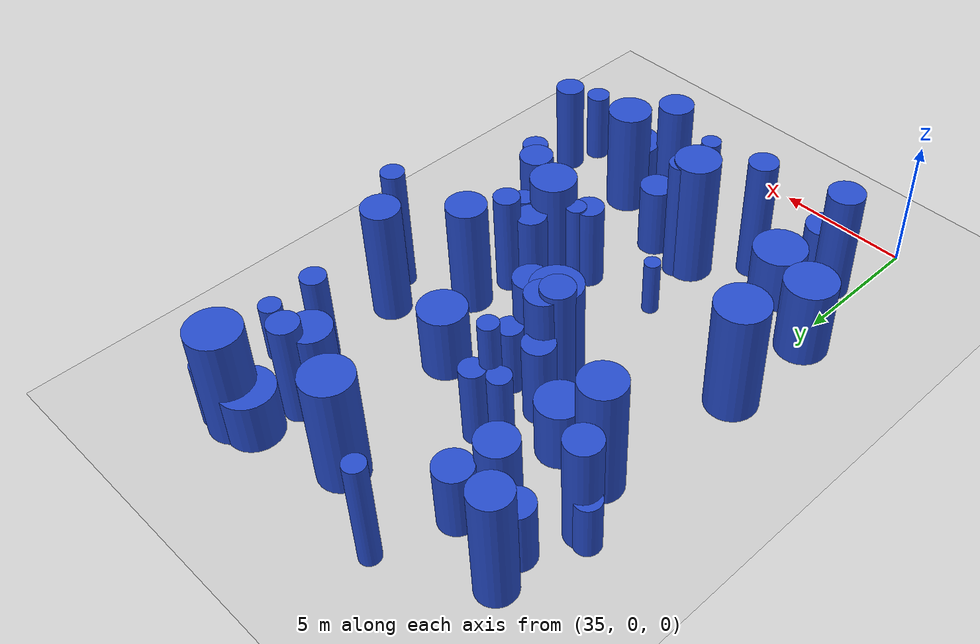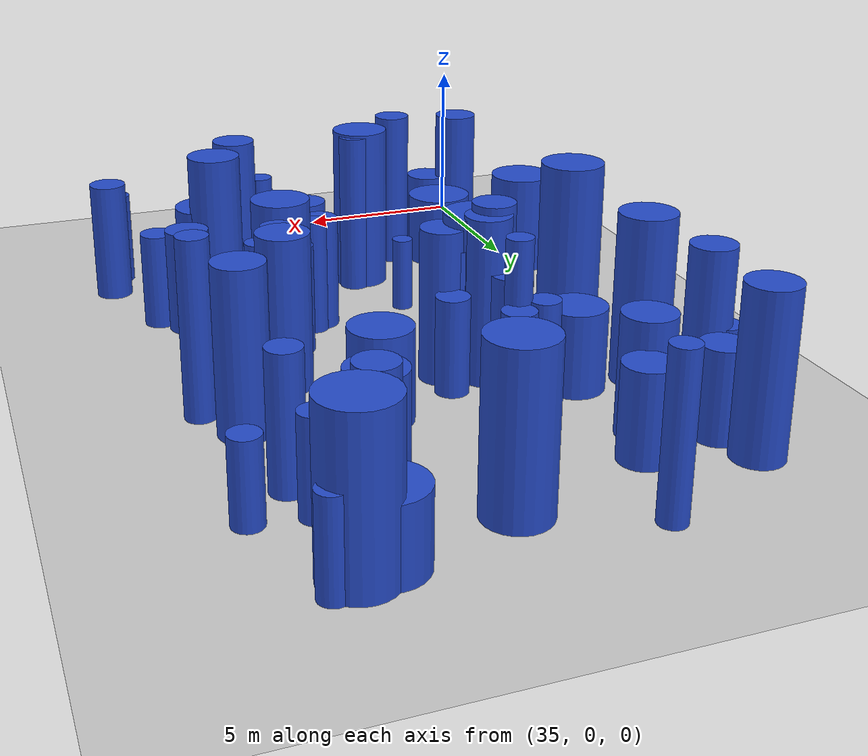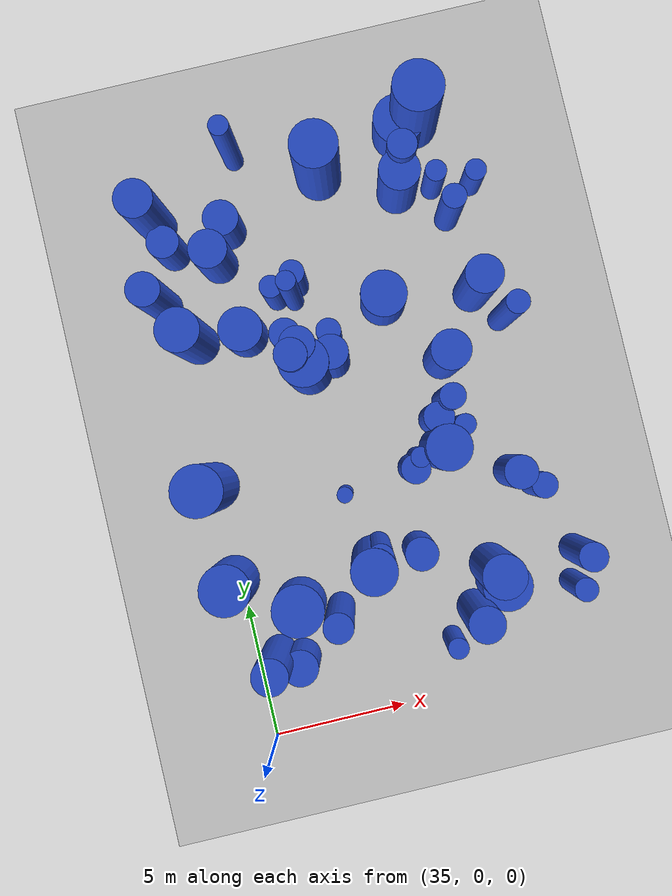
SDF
<sdf version="1.6">
 <world name="default">
  <model name="ground_plane">
   <static>1</static>
   <link name="link">
    <collision name="collision">
     <geometry><plane><normal>0 0 1</normal><size>100 100</size></plane></geometry>
     <surface><friction><ode><mu>100</mu><mu2>50</mu2></ode></friction></surface>
    </collision>
    <visual name="visual">
     <cast_shadows>0</cast_shadows>
     <geometry><plane><normal>0 0 1</normal><size>100 100</size></plane></geometry>
     <material>
      <script><uri>file://media/materials/scripts/gazebo.material</uri><name>Gazebo/Grey</name></script>
     </material>
    </visual>
   </link>
  </model>
  <model name="2">
   <static>0</static>
   <link name="link">
    <inertial>
     <mass>2</mass>
     <inertia><ixx>3.20586</ixx><ixy>0</ixy><ixz>0</ixz><iyy>3.20586</iyy><iyz>0</iyz><izz>0.636563</izz></inertia>
    </inertial>
    <collision name="collision">
     <geometry><cylinder><length>4.16238</length><radius>0.797849</radius></cylinder></geometry>
     <surface><contact><collide_without_contact>1</collide_without_contact></contact></surface>
    </collision>
    <visual name="visual">
     <geometry><cylinder><length>4.16238</length><radius>0.797849</radius></cylinder></geometry>
     <material>
      <script><uri>file://media/materials/scripts/gazebo.material</uri><name>Gazebo/Blue</name></script>
     </material>
    </visual>
    <gravity>0</gravity>
   </link>
   <pose>44.4662 4.48744 2.08119 0 -0 0</pose>
  </model>
  <model name="8">
   <static>0</static>
   <link name="link">
    <inertial>
     <mass>2</mass>
     <inertia><ixx>3.88325</ixx><ixy>0</ixy><ixz>0</ixz><iyy>3.88325</iyy><iyz>0</iyz><izz>0.126882</izz></inertia>
    </inertial>
    <collision name="collision">
     <geometry><cylinder><length>4.78737</length><radius>0.356206</radius></cylinder></geometry>
     <surface><contact><collide_without_contact>1</collide_without_contact></contact></surface>
    </collision>
    <visual name="visual">
     <geometry><cylinder><length>4.78737</length><radius>0.356206</radius></cylinder></geometry>
     <material>
      <script><uri>file://media/materials/scripts/gazebo.material</uri><name>Gazebo/Blue</name></script>
     </material>
    </visual>
    <gravity>0</gravity>
   </link>
   <pose>39.4281 16.1246 2.39368 0 -0 0</pose>
  </model>
  <model name="10">
   <static>0</static>
   <link name="link">
    <inertial>
     <mass>2</mass>
     <inertia><ixx>3.24813</ixx><ixy>0</ixy><ixz>0</ixz><iyy>3.24813</iyy><iyz>0</iyz><izz>0.387761</izz></inertia>
    </inertial>
    <collision name="collision">
     <geometry><cylinder><length>4.28083</length><radius>0.622705</radius></cylinder></geometry>
     <surface><contact><collide_without_contact>1</collide_without_contact></contact></surface>
    </collision>
    <visual name="visual">
     <geometry><cylinder><length>4.28083</length><radius>0.622705</radius></cylinder></geometry>
     <material>
      <script><uri>file://media/materials/scripts/gazebo.material</uri><name>Gazebo/Blue</name></script>
     </material>
    </visual>
    <gravity>0</gravity>
   </link>
   <pose>40.3812 13.4456 2.14041 0 -0 0</pose>
  </model>
  <model name="30">
   <static>0</static>
   <link name="link">
    <inertial>
     <mass>2</mass>
     <inertia><ixx>2.2394</ixx><ixy>0</ixy><ixz>0</ixz><iyy>2.2394</iyy><iyz>0</iyz><izz>0.282543</izz></inertia>
    </inertial>
    <collision name="collision">
     <geometry><cylinder><length>3.54806</length><radius>0.531548</radius></cylinder></geometry>
     <surface><contact><collide_without_contact>1</collide_without_contact></contact></surface>
    </collision>
    <visual name="visual">
     <geometry><cylinder><length>3.54806</length><radius>0.531548</radius></cylinder></geometry>
     <material>
      <script><uri>file://media/materials/scripts/gazebo.material</uri><name>Gazebo/Blue</name></script>
     </material>
    </visual>
    <gravity>0</gravity>
   </link>
   <pose>47.7304 4.35367 1.77403 0 -0 0</pose>
  </model>
  <model name="36">
   <static>0</static>
   <link name="link">
    <inertial>
     <mass>2</mass>
     <inertia><ixx>4.09144</ixx><ixy>0</ixy><ixz>0</ixz><iyy>4.09144</iyy><iyz>0</iyz><izz>0.182254</izz></inertia>
    </inertial>
    <collision name="collision">
     <geometry><cylinder><length>4.89917</length><radius>0.426913</radius></cylinder></geometry>
     <surface><contact><collide_without_contact>1</collide_without_contact></contact></surface>
    </collision>
    <visual name="visual">
     <geometry><cylinder><length>4.89917</length><radius>0.426913</radius></cylinder></geometry>
     <material>
      <script><uri>file://media/materials/scripts/gazebo.material</uri><name>Gazebo/Blue</name></script>
     </material>
    </visual>
    <gravity>0</gravity>
   </link>
   <pose>47.0082 13.591 2.44958 0 -0 0</pose>
  </model>
  <model name="55">
   <static>0</static>
   <link name="link">
    <inertial>
     <mass>2</mass>
     <inertia><ixx>2.32083</ixx><ixy>0</ixy><ixz>0</ixz><iyy>2.32083</iyy><iyz>0</iyz><izz>0.590697</izz></inertia>
    </inertial>
    <collision name="collision">
     <geometry><cylinder><length>3.4861</length><radius>0.768568</radius></cylinder></geometry>
     <surface><contact><collide_without_contact>1</collide_without_contact></contact></surface>
    </collision>
    <visual name="visual">
     <geometry><cylinder><length>3.4861</length><radius>0.768568</radius></cylinder></geometry>
     <material>
      <script><uri>file://media/materials/scripts/gazebo.material</uri><name>Gazebo/Blue</name></script>
     </material>
    </visual>
    <gravity>0</gravity>
   </link>
   <pose>44.2646 19.3378 1.74305 0 -0 0</pose>
  </model>
  <model name="68">
   <static>0</static>
   <link name="link">
    <inertial>
     <mass>2</mass>
     <inertia><ixx>4.05064</ixx><ixy>0</ixy><ixz>0</ixz><iyy>4.05064</iyy><iyz>0</iyz><izz>0.285058</izz></inertia>
    </inertial>
    <collision name="collision">
     <geometry><cylinder><length>4.84238</length><radius>0.533908</radius></cylinder></geometry>
     <surface><contact><collide_without_contact>1</collide_without_contact></contact></surface>
    </collision>
    <visual name="visual">
     <geometry><cylinder><length>4.84238</length><radius>0.533908</radius></cylinder></geometry>
     <material>
      <script><uri>file://media/materials/scripts/gazebo.material</uri><name>Gazebo/Blue</name></script>
     </material>
    </visual>
    <gravity>0</gravity>
   </link>
   <pose>38.5073 4.20949 2.42119 0 -0 0</pose>
  </model>
  <model name="70">
   <static>0</static>
   <link name="link">
    <inertial>
     <mass>2</mass>
     <inertia><ixx>3.66577</ixx><ixy>0</ixy><ixz>0</ixz><iyy>3.66577</iyy><iyz>0</iyz><izz>0.497393</izz></inertia>
    </inertial>
    <collision name="collision">
     <geometry><cylinder><length>4.52796</length><radius>0.705261</radius></cylinder></geometry>
     <surface><contact><collide_without_contact>1</collide_without_contact></contact></surface>
    </collision>
    <visual name="visual">
     <geometry><cylinder><length>4.52796</length><radius>0.705261</radius></cylinder></geometry>
     <material>
      <script><uri>file://media/materials/scripts/gazebo.material</uri><name>Gazebo/Blue</name></script>
     </material>
    </visual>
    <gravity>0</gravity>
   </link>
   <pose>34.9107 20.1823 2.26398 0 -0 0</pose>
  </model>
  <model name="72">
   <static>0</static>
   <link name="link">
    <inertial>
     <mass>2</mass>
     <inertia><ixx>1.26226</ixx><ixy>0</ixy><ixz>0</ixz><iyy>1.26226</iyy><iyz>0</iyz><izz>0.691062</izz></inertia>
    </inertial>
    <collision name="collision">
     <geometry><cylinder><length>2.34529</length><radius>0.831302</radius></cylinder></geometry>
     <surface><contact><collide_without_contact>1</collide_without_contact></contact></surface>
    </collision>
    <visual name="visual">
     <geometry><cylinder><length>2.34529</length><radius>0.831302</radius></cylinder></geometry>
     <material>
      <script><uri>file://media/materials/scripts/gazebo.material</uri><name>Gazebo/Blue</name></script>
     </material>
    </visual>
    <gravity>0</gravity>
   </link>
   <pose>37.3059 15.2245 1.17264 0 -0 0</pose>
  </model>
  <model name="75">
   <static>0</static>
   <link name="link">
    <inertial>
     <mass>2</mass>
     <inertia><ixx>3.39002</ixx><ixy>0</ixy><ixz>0</ixz><iyy>3.39002</iyy><iyz>0</iyz><izz>0.436853</izz></inertia>
    </inertial>
    <collision name="collision">
     <geometry><cylinder><length>4.36229</length><radius>0.660948</radius></cylinder></geometry>
     <surface><contact><collide_without_contact>1</collide_without_contact></contact></surface>
    </collision>
    <visual name="visual">
     <geometry><cylinder><length>4.36229</length><radius>0.660948</radius></cylinder></geometry>
     <material>
      <script><uri>file://media/materials/scripts/gazebo.material</uri><name>Gazebo/Blue</name></script>
     </material>
    </visual>
    <gravity>0</gravity>
   </link>
   <pose>35.805 3.03949 2.18115 0 -0 0</pose>
  </model>
  <model name="78">
   <static>0</static>
   <link name="link">
    <inertial>
     <mass>2</mass>
     <inertia><ixx>4.04847</ixx><ixy>0</ixy><ixz>0</ixz><iyy>4.04847</iyy><iyz>0</iyz><izz>0.629911</izz></inertia>
    </inertial>
    <collision name="collision">
     <geometry><cylinder><length>4.73298</length><radius>0.793669</radius></cylinder></geometry>
     <surface><contact><collide_without_contact>1</collide_without_contact></contact></surface>
    </collision>
    <visual name="visual">
     <geometry><cylinder><length>4.73298</length><radius>0.793669</radius></cylinder></geometry>
     <material>
      <script><uri>file://media/materials/scripts/gazebo.material</uri><name>Gazebo/Blue</name></script>
     </material>
    </visual>
    <gravity>0</gravity>
   </link>
   <pose>35.4182 15.3407 2.36649 0 -0 0</pose>
  </model>
  <model name="83">
   <static>0</static>
   <link name="link">
    <inertial>
     <mass>2</mass>
     <inertia><ixx>1.1459</ixx><ixy>0</ixy><ixz>0</ixz><iyy>1.1459</iyy><iyz>0</iyz><izz>0.941021</izz></inertia>
    </inertial>
    <collision name="collision">
     <geometry><cylinder><length>2.01304</length><radius>0.970062</radius></cylinder></geometry>
     <surface><contact><collide_without_contact>1</collide_without_contact></contact></surface>
    </collision>
    <visual name="visual">
     <geometry><cylinder><length>2.01304</length><radius>0.970062</radius></cylinder></geometry>
     <material>
      <script><uri>file://media/materials/scripts/gazebo.material</uri><name>Gazebo/Blue</name></script>
     </material>
    </visual>
    <gravity>0</gravity>
   </link>
   <pose>44.8178 21.6069 1.00652 0 -0 0</pose>
  </model>
  <model name="92">
   <static>0</static>
   <link name="link">
    <inertial>
     <mass>2</mass>
     <inertia><ixx>2.81245</ixx><ixy>0</ixy><ixz>0</ixz><iyy>2.81245</iyy><iyz>0</iyz><izz>0.301857</izz></inertia>
    </inertial>
    <collision name="collision">
     <geometry><cylinder><length>3.99614</length><radius>0.549415</radius></cylinder></geometry>
     <surface><contact><collide_without_contact>1</collide_without_contact></contact></surface>
    </collision>
    <visual name="visual">
     <geometry><cylinder><length>3.99614</length><radius>0.549415</radius></cylinder></geometry>
     <material>
      <script><uri>file://media/materials/scripts/gazebo.material</uri><name>Gazebo/Blue</name></script>
     </material>
    </visual>
    <gravity>0</gravity>
   </link>
   <pose>44.5098 20.0687 1.99807 0 -0 0</pose>
  </model>
  <model name="96">
   <static>0</static>
   <link name="link">
    <inertial>
     <mass>2</mass>
     <inertia><ixx>1.17348</ixx><ixy>0</ixy><ixz>0</ixz><iyy>1.17348</iyy><iyz>0</iyz><izz>0.148193</izz></inertia>
    </inertial>
    <collision name="collision">
     <geometry><cylinder><length>2.56832</length><radius>0.384959</radius></cylinder></geometry>
     <surface><contact><collide_without_contact>1</collide_without_contact></contact></surface>
    </collision>
    <visual name="visual">
     <geometry><cylinder><length>2.56832</length><radius>0.384959</radius></cylinder></geometry>
     <material>
      <script><uri>file://media/materials/scripts/gazebo.material</uri><name>Gazebo/Blue</name></script>
     </material>
    </visual>
    <gravity>0</gravity>
   </link>
   <pose>42.4134 2.12337 1.28416 0 -0 0</pose>
  </model>
  <model name="107">
   <static>0</static>
   <link name="link">
    <inertial>
     <mass>2</mass>
     <inertia><ixx>1.72381</ixx><ixy>0</ixy><ixz>0</ixz><iyy>1.72381</iyy><iyz>0</iyz><izz>0.38773</izz></inertia>
    </inertial>
    <collision name="collision">
     <geometry><cylinder><length>3.0298</length><radius>0.62268</radius></cylinder></geometry>
     <surface><contact><collide_without_contact>1</collide_without_contact></contact></surface>
    </collision>
    <visual name="visual">
     <geometry><cylinder><length>3.0298</length><radius>0.62268</radius></cylinder></geometry>
     <material>
      <script><uri>file://media/materials/scripts/gazebo.material</uri><name>Gazebo/Blue</name></script>
     </material>
    </visual>
    <gravity>0</gravity>
   </link>
   <pose>46.0377 7.80321 1.5149 0 -0 0</pose>
  </model>
  <model name="113">
   <static>0</static>
   <link name="link">
    <inertial>
     <mass>2</mass>
     <inertia><ixx>1.79663</ixx><ixy>0</ixy><ixz>0</ixz><iyy>1.79663</iyy><iyz>0</iyz><izz>0.325162</izz></inertia>
    </inertial>
    <collision name="collision">
     <geometry><cylinder><length>3.13118</length><radius>0.57023</radius></cylinder></geometry>
     <surface><contact><collide_without_contact>1</collide_without_contact></contact></surface>
    </collision>
    <visual name="visual">
     <geometry><cylinder><length>3.13118</length><radius>0.57023</radius></cylinder></geometry>
     <material>
      <script><uri>file://media/materials/scripts/gazebo.material</uri><name>Gazebo/Blue</name></script>
     </material>
    </visual>
    <gravity>0</gravity>
   </link>
   <pose>43.6165 10.3969 1.56559 0 -0 0</pose>
  </model>
  <model name="124">
   <static>0</static>
   <link name="link">
    <inertial>
     <mass>2</mass>
     <inertia><ixx>1.4041</ixx><ixy>0</ixy><ixz>0</ixz><iyy>1.4041</iyy><iyz>0</iyz><izz>0.229798</izz></inertia>
    </inertial>
    <collision name="collision">
     <geometry><cylinder><length>2.78123</length><radius>0.479372</radius></cylinder></geometry>
     <surface><contact><collide_without_contact>1</collide_without_contact></contact></surface>
    </collision>
    <visual name="visual">
     <geometry><cylinder><length>2.78123</length><radius>0.479372</radius></cylinder></geometry>
     <material>
      <script><uri>file://media/materials/scripts/gazebo.material</uri><name>Gazebo/Blue</name></script>
     </material>
    </visual>
    <gravity>0</gravity>
   </link>
   <pose>46.7902 7.13736 1.39061 0 -0 0</pose>
  </model>
  <model name="129">
   <static>0</static>
   <link name="link">
    <inertial>
     <mass>2</mass>
     <inertia><ixx>2.30241</ixx><ixy>0</ixy><ixz>0</ixz><iyy>2.30241</iyy><iyz>0</iyz><izz>0.209643</izz></inertia>
    </inertial>
    <collision name="collision">
     <geometry><cylinder><length>3.63118</length><radius>0.457868</radius></cylinder></geometry>
     <surface><contact><collide_without_contact>1</collide_without_contact></contact></surface>
    </collision>
    <visual name="visual">
     <geometry><cylinder><length>3.63118</length><radius>0.457868</radius></cylinder></geometry>
     <material>
      <script><uri>file://media/materials/scripts/gazebo.material</uri><name>Gazebo/Blue</name></script>
     </material>
    </visual>
    <gravity>0</gravity>
   </link>
   <pose>45.9307 17.922 1.81559 0 -0 0</pose>
  </model>
  <model name="136">
   <static>0</static>
   <link name="link">
    <inertial>
     <mass>2</mass>
     <inertia><ixx>1.26179</ixx><ixy>0</ixy><ixz>0</ixz><iyy>1.26179</iyy><iyz>0</iyz><izz>0.374981</izz></inertia>
    </inertial>
    <collision name="collision">
     <geometry><cylinder><length>2.53885</length><radius>0.612357</radius></cylinder></geometry>
     <surface><contact><collide_without_contact>1</collide_without_contact></contact></surface>
    </collision>
    <visual name="visual">
     <geometry><cylinder><length>2.53885</length><radius>0.612357</radius></cylinder></geometry>
     <material>
      <script><uri>file://media/materials/scripts/gazebo.material</uri><name>Gazebo/Blue</name></script>
     </material>
    </visual>
    <gravity>0</gravity>
   </link>
   <pose>35.2739 18.9705 1.26943 0 -0 0</pose>
  </model>
  <model name="142">
   <static>0</static>
   <link name="link">
    <inertial>
     <mass>2</mass>
     <inertia><ixx>1.48896</ixx><ixy>0</ixy><ixz>0</ixz><iyy>1.48896</iyy><iyz>0</iyz><izz>0.754625</izz></inertia>
    </inertial>
    <collision name="collision">
     <geometry><cylinder><length>2.58261</length><radius>0.868692</radius></cylinder></geometry>
     <surface><contact><collide_without_contact>1</collide_without_contact></contact></surface>
    </collision>
    <visual name="visual">
     <geometry><cylinder><length>2.58261</length><radius>0.868692</radius></cylinder></geometry>
     <material>
      <script><uri>file://media/materials/scripts/gazebo.material</uri><name>Gazebo/Blue</name></script>
     </material>
    </visual>
    <gravity>0</gravity>
   </link>
   <pose>42.7426 15.2603 1.29131 0 -0 0</pose>
  </model>
  <model name="143">
   <static>0</static>
   <link name="link">
    <inertial>
     <mass>2</mass>
     <inertia><ixx>3.53239</ixx><ixy>0</ixy><ixz>0</ixz><iyy>3.53239</iyy><iyz>0</iyz><izz>0.90512</izz></inertia>
    </inertial>
    <collision name="collision">
     <geometry><cylinder><length>4.29872</length><radius>0.951378</radius></cylinder></geometry>
     <surface><contact><collide_without_contact>1</collide_without_contact></contact></surface>
    </collision>
    <visual name="visual">
     <geometry><cylinder><length>4.29872</length><radius>0.951378</radius></cylinder></geometry>
     <material>
      <script><uri>file://media/materials/scripts/gazebo.material</uri><name>Gazebo/Blue</name></script>
     </material>
    </visual>
    <gravity>0</gravity>
   </link>
   <pose>45.5094 21.8679 2.14936 0 -0 0</pose>
  </model>
  <model name="149">
   <static>0</static>
   <link name="link">
    <inertial>
     <mass>2</mass>
     <inertia><ixx>3.19204</ixx><ixy>0</ixy><ixz>0</ixz><iyy>3.19204</iyy><iyz>0</iyz><izz>0.69083</izz></inertia>
    </inertial>
    <collision name="collision">
     <geometry><cylinder><length>4.13277</length><radius>0.831162</radius></cylinder></geometry>
     <surface><contact><collide_without_contact>1</collide_without_contact></contact></surface>
    </collision>
    <visual name="visual">
     <geometry><cylinder><length>4.13277</length><radius>0.831162</radius></cylinder></geometry>
     <material>
      <script><uri>file://media/materials/scripts/gazebo.material</uri><name>Gazebo/Blue</name></script>
     </material>
    </visual>
    <gravity>0</gravity>
   </link>
   <pose>43.6358 9.26999 2.06638 0 -0 0</pose>
  </model>
  <model name="151">
   <static>0</static>
   <link name="link">
    <inertial>
     <mass>2</mass>
     <inertia><ixx>1.73489</ixx><ixy>0</ixy><ixz>0</ixz><iyy>1.73489</iyy><iyz>0</iyz><izz>0.173939</izz></inertia>
    </inertial>
    <collision name="collision">
     <geometry><cylinder><length>3.14445</length><radius>0.41706</radius></cylinder></geometry>
     <surface><contact><collide_without_contact>1</collide_without_contact></contact></surface>
    </collision>
    <visual name="visual">
     <geometry><cylinder><length>3.14445</length><radius>0.41706</radius></cylinder></geometry>
     <material>
      <script><uri>file://media/materials/scripts/gazebo.material</uri><name>Gazebo/Blue</name></script>
     </material>
    </visual>
    <gravity>0</gravity>
   </link>
   <pose>38.7905 16.3474 1.57222 0 -0 0</pose>
  </model>
  <model name="157">
   <static>0</static>
   <link name="link">
    <inertial>
     <mass>2</mass>
     <inertia><ixx>1.33129</ixx><ixy>0</ixy><ixz>0</ixz><iyy>1.33129</iyy><iyz>0</iyz><izz>0.217097</izz></inertia>
    </inertial>
    <collision name="collision">
     <geometry><cylinder><length>2.70858</length><radius>0.465937</radius></cylinder></geometry>
     <surface><contact><collide_without_contact>1</collide_without_contact></contact></surface>
    </collision>
    <visual name="visual">
     <geometry><cylinder><length>2.70858</length><radius>0.465937</radius></cylinder></geometry>
     <material>
      <script><uri>file://media/materials/scripts/gazebo.material</uri><name>Gazebo/Blue</name></script>
     </material>
    </visual>
    <gravity>0</gravity>
   </link>
   <pose>40.456 14.377 1.35429 0 -0 0</pose>
  </model>
  <model name="161">
   <static>0</static>
   <link name="link">
    <inertial>
     <mass>2</mass>
     <inertia><ixx>1.94302</ixx><ixy>0</ixy><ixz>0</ixz><iyy>1.94302</iyy><iyz>0</iyz><izz>0.289682</izz></inertia>
    </inertial>
    <collision name="collision">
     <geometry><cylinder><length>3.28467</length><radius>0.538221</radius></cylinder></geometry>
     <surface><contact><collide_without_contact>1</collide_without_contact></contact></surface>
    </collision>
    <visual name="visual">
     <geometry><cylinder><length>3.28467</length><radius>0.538221</radius></cylinder></geometry>
     <material>
      <script><uri>file://media/materials/scripts/gazebo.material</uri><name>Gazebo/Blue</name></script>
     </material>
    </visual>
    <gravity>0</gravity>
   </link>
   <pose>42.3718 8.77913 1.64233 0 -0 0</pose>
  </model>
  <model name="162">
   <static>0</static>
   <link name="link">
    <inertial>
     <mass>2</mass>
     <inertia><ixx>1.94466</ixx><ixy>0</ixy><ixz>0</ixz><iyy>1.94466</iyy><iyz>0</iyz><izz>0.138357</izz></inertia>
    </inertial>
    <collision name="collision">
     <geometry><cylinder><length>3.35453</length><radius>0.371964</radius></cylinder></geometry>
     <surface><contact><collide_without_contact>1</collide_without_contact></contact></surface>
    </collision>
    <visual name="visual">
     <geometry><cylinder><length>3.35453</length><radius>0.371964</radius></cylinder></geometry>
     <material>
      <script><uri>file://media/materials/scripts/gazebo.material</uri><name>Gazebo/Blue</name></script>
     </material>
    </visual>
    <gravity>0</gravity>
   </link>
   <pose>42.6403 9.15377 1.67727 0 -0 0</pose>
  </model>
  <model name="165">
   <static>0</static>
   <link name="link">
    <inertial>
     <mass>2</mass>
     <inertia><ixx>1.24681</ixx><ixy>0</ixy><ixz>0</ixz><iyy>1.24681</iyy><iyz>0</iyz><izz>0.164275</izz></inertia>
    </inertial>
    <collision name="collision">
     <geometry><cylinder><length>2.64349</length><radius>0.405309</radius></cylinder></geometry>
     <surface><contact><collide_without_contact>1</collide_without_contact></contact></surface>
    </collision>
    <visual name="visual">
     <geometry><cylinder><length>2.64349</length><radius>0.405309</radius></cylinder></geometry>
     <material>
      <script><uri>file://media/materials/scripts/gazebo.material</uri><name>Gazebo/Blue</name></script>
     </material>
    </visual>
    <gravity>0</gravity>
   </link>
   <pose>45.6412 19.2257 1.32174 0 -0 0</pose>
  </model>
  <model name="227">
   <static>0</static>
   <link name="link">
    <inertial>
     <mass>2</mass>
     <inertia><ixx>1.99138</ixx><ixy>0</ixy><ixz>0</ixz><iyy>1.99138</iyy><iyz>0</iyz><izz>0.902119</izz></inertia>
    </inertial>
    <collision name="collision">
     <geometry><cylinder><length>3.04005</length><radius>0.949799</radius></cylinder></geometry>
     <surface><contact><collide_without_contact>1</collide_without_contact></contact></surface>
    </collision>
    <visual name="visual">
     <geometry><cylinder><length>3.04005</length><radius>0.949799</radius></cylinder></geometry>
     <material>
      <script><uri>file://media/materials/scripts/gazebo.material</uri><name>Gazebo/Blue</name></script>
     </material>
    </visual>
    <gravity>0</gravity>
   </link>
   <pose>34.735 6.1163 1.52003 0 -0 0</pose>
  </model>
  <model name="229">
   <static>0</static>
   <link name="link">
    <inertial>
     <mass>2</mass>
     <inertia><ixx>1.75079</ixx><ixy>0</ixy><ixz>0</ixz><iyy>1.75079</iyy><iyz>0</iyz><izz>0.155097</izz></inertia>
    </inertial>
    <collision name="collision">
     <geometry><cylinder><length>3.16851</length><radius>0.393824</radius></cylinder></geometry>
     <surface><contact><collide_without_contact>1</collide_without_contact></contact></surface>
    </collision>
    <visual name="visual">
     <geometry><cylinder><length>3.16851</length><radius>0.393824</radius></cylinder></geometry>
     <material>
      <script><uri>file://media/materials/scripts/gazebo.material</uri><name>Gazebo/Blue</name></script>
     </material>
    </visual>
    <gravity>0</gravity>
   </link>
   <pose>44.4702 9.92476 1.58426 0 -0 0</pose>
  </model>
  <model name="238">
   <static>0</static>
   <link name="link">
    <inertial>
     <mass>2</mass>
     <inertia><ixx>1.28037</ixx><ixy>0</ixy><ixz>0</ixz><iyy>1.28037</iyy><iyz>0</iyz><izz>0.973419</izz></inertia>
    </inertial>
    <collision name="collision">
     <geometry><cylinder><length>2.18219</length><radius>0.98662</radius></cylinder></geometry>
     <surface><contact><collide_without_contact>1</collide_without_contact></contact></surface>
    </collision>
    <visual name="visual">
     <geometry><cylinder><length>2.18219</length><radius>0.98662</radius></cylinder></geometry>
     <material>
      <script><uri>file://media/materials/scripts/gazebo.material</uri><name>Gazebo/Blue</name></script>
     </material>
    </visual>
    <gravity>0</gravity>
   </link>
   <pose>37.0316 4.69177 1.09109 0 -0 0</pose>
  </model>
  <model name="243">
   <static>0</static>
   <link name="link">
    <inertial>
     <mass>2</mass>
     <inertia><ixx>2.03166</ixx><ixy>0</ixy><ixz>0</ixz><iyy>2.03166</iyy><iyz>0</iyz><izz>0.515448</izz></inertia>
    </inertial>
    <collision name="collision">
     <geometry><cylinder><length>3.26246</length><radius>0.717947</radius></cylinder></geometry>
     <surface><contact><collide_without_contact>1</collide_without_contact></contact></surface>
    </collision>
    <visual name="visual">
     <geometry><cylinder><length>3.26246</length><radius>0.717947</radius></cylinder></geometry>
     <material>
      <script><uri>file://media/materials/scripts/gazebo.material</uri><name>Gazebo/Blue</name></script>
     </material>
    </visual>
    <gravity>0</gravity>
   </link>
   <pose>36.8996 18.18 1.63123 0 -0 0</pose>
  </model>
  <model name="246">
   <static>0</static>
   <link name="link">
    <inertial>
     <mass>2</mass>
     <inertia><ixx>1.35548</ixx><ixy>0</ixy><ixz>0</ixz><iyy>1.35548</iyy><iyz>0</iyz><izz>0.859848</izz></inertia>
    </inertial>
    <collision name="collision">
     <geometry><cylinder><length>2.35655</length><radius>0.92728</radius></cylinder></geometry>
     <surface><contact><collide_without_contact>1</collide_without_contact></contact></surface>
    </collision>
    <visual name="visual">
     <geometry><cylinder><length>2.35655</length><radius>0.92728</radius></cylinder></geometry>
     <material>
      <script><uri>file://media/materials/scripts/gazebo.material</uri><name>Gazebo/Blue</name></script>
     </material>
    </visual>
    <gravity>0</gravity>
   </link>
   <pose>44.6874 3.85991 1.17828 0 -0 0</pose>
  </model>
  <model name="256">
   <static>0</static>
   <link name="link">
    <inertial>
     <mass>2</mass>
     <inertia>
      <ixx>0.834098</ixx>
      <ixy>0</ixy>
      <ixz>0</ixz>
      <iyy>0.834098</iyy>
      <iyz>0</iyz>
      <izz>0.0907304</izz>
     </inertia>
    </inertial>
    <collision name="collision">
     <geometry><cylinder><length>2.17541</length><radius>0.301215</radius></cylinder></geometry>
     <surface><contact><collide_without_contact>1</collide_without_contact></contact></surface>
    </collision>
    <visual name="visual">
     <geometry><cylinder><length>2.17541</length><radius>0.301215</radius></cylinder></geometry>
     <material>
      <script><uri>file://media/materials/scripts/gazebo.material</uri><name>Gazebo/Blue</name></script>
     </material>
    </visual>
    <gravity>0</gravity>
   </link>
   <pose>39.6691 8.4141 1.0877 0 -0 0</pose>
  </model>
  <model name="261">
   <static>0</static>
   <link name="link">
    <inertial>
     <mass>2</mass>
     <inertia><ixx>3.81616</ixx><ixy>0</ixy><ixz>0</ixz><iyy>3.81616</iyy><iyz>0</iyz><izz>0.404873</izz></inertia>
    </inertial>
    <collision name="collision">
     <geometry><cylinder><length>4.65643</length><radius>0.636296</radius></cylinder></geometry>
     <surface><contact><collide_without_contact>1</collide_without_contact></contact></surface>
    </collision>
    <visual name="visual">
     <geometry><cylinder><length>4.65643</length><radius>0.636296</radius></cylinder></geometry>
     <material>
      <script><uri>file://media/materials/scripts/gazebo.material</uri><name>Gazebo/Blue</name></script>
     </material>
    </visual>
    <gravity>0</gravity>
   </link>
   <pose>39.3077 13.9389 2.32822 0 -0 0</pose>
  </model>
  <model name="268">
   <static>0</static>
   <link name="link">
    <inertial>
     <mass>2</mass>
     <inertia><ixx>4.02512</ixx><ixy>0</ixy><ixz>0</ixz><iyy>4.02512</iyy><iyz>0</iyz><izz>0.204017</izz></inertia>
    </inertial>
    <collision name="collision">
     <geometry><cylinder><length>4.85167</length><radius>0.451683</radius></cylinder></geometry>
     <surface><contact><collide_without_contact>1</collide_without_contact></contact></surface>
    </collision>
    <visual name="visual">
     <geometry><cylinder><length>4.85167</length><radius>0.451683</radius></cylinder></geometry>
     <material>
      <script><uri>file://media/materials/scripts/gazebo.material</uri><name>Gazebo/Blue</name></script>
     </material>
    </visual>
    <gravity>0</gravity>
   </link>
   <pose>40.4575 6.21792 2.42583 0 -0 0</pose>
  </model>
  <model name="288">
   <static>0</static>
   <link name="link">
    <inertial>
     <mass>2</mass>
     <inertia>
      <ixx>0.931844</ixx>
      <ixy>0</ixy>
      <ixz>0</ixz>
      <iyy>0.931844</iyy>
      <iyz>0</iyz>
      <izz>0.166056</izz>
     </inertia>
    </inertial>
    <collision name="collision">
     <geometry><cylinder><length>2.25674</length><radius>0.4075</radius></cylinder></geometry>
     <surface><contact><collide_without_contact>1</collide_without_contact></contact></surface>
    </collision>
    <visual name="visual">
     <geometry><cylinder><length>2.25674</length><radius>0.4075</radius></cylinder></geometry>
     <material>
      <script><uri>file://media/materials/scripts/gazebo.material</uri><name>Gazebo/Blue</name></script>
     </material>
    </visual>
    <gravity>0</gravity>
   </link>
   <pose>47.1407 19.0208 1.12837 0 -0 0</pose>
  </model>
  <model name="293">
   <static>0</static>
   <link name="link">
    <inertial>
     <mass>2</mass>
     <inertia><ixx>3.3956</ixx><ixy>0</ixy><ixz>0</ixz><iyy>3.3956</iyy><iyz>0</iyz><izz>0.527034</izz></inertia>
    </inertial>
    <collision name="collision">
     <geometry><cylinder><length>4.33503</length><radius>0.725971</radius></cylinder></geometry>
     <surface><contact><collide_without_contact>1</collide_without_contact></contact></surface>
    </collision>
    <visual name="visual">
     <geometry><cylinder><length>4.33503</length><radius>0.725971</radius></cylinder></geometry>
     <material>
      <script><uri>file://media/materials/scripts/gazebo.material</uri><name>Gazebo/Blue</name></script>
     </material>
    </visual>
    <gravity>0</gravity>
   </link>
   <pose>44.4689 12.5576 2.16752 0 -0 0</pose>
  </model>
  <model name="303">
   <static>0</static>
   <link name="link">
    <inertial>
     <mass>2</mass>
     <inertia><ixx>3.71654</ixx><ixy>0</ixy><ixz>0</ixz><iyy>3.71654</iyy><iyz>0</iyz><izz>0.4771</izz></inertia>
    </inertial>
    <collision name="collision">
     <geometry><cylinder><length>4.56815</length><radius>0.690725</radius></cylinder></geometry>
     <surface><contact><collide_without_contact>1</collide_without_contact></contact></surface>
    </collision>
    <visual name="visual">
     <geometry><cylinder><length>4.56815</length><radius>0.690725</radius></cylinder></geometry>
     <material>
      <script><uri>file://media/materials/scripts/gazebo.material</uri><name>Gazebo/Blue</name></script>
     </material>
    </visual>
    <gravity>0</gravity>
   </link>
   <pose>46.1727 14.8291 2.28407 0 -0 0</pose>
  </model>
  <model name="305">
   <static>0</static>
   <link name="link">
    <inertial>
     <mass>2</mass>
     <inertia><ixx>1.30666</ixx><ixy>0</ixy><ixz>0</ixz><iyy>1.30666</iyy><iyz>0</iyz><izz>0.448983</izz></inertia>
    </inertial>
    <collision name="collision">
     <geometry><cylinder><length>2.54814</length><radius>0.670062</radius></cylinder></geometry>
     <surface><contact><collide_without_contact>1</collide_without_contact></contact></surface>
    </collision>
    <visual name="visual">
     <geometry><cylinder><length>2.54814</length><radius>0.670062</radius></cylinder></geometry>
     <material>
      <script><uri>file://media/materials/scripts/gazebo.material</uri><name>Gazebo/Blue</name></script>
     </material>
    </visual>
    <gravity>0</gravity>
   </link>
   <pose>37.5407 19.352 1.27407 0 -0 0</pose>
  </model>
  <model name="319">
   <static>0</static>
   <link name="link">
    <inertial>
     <mass>2</mass>
     <inertia><ixx>3.84072</ixx><ixy>0</ixy><ixz>0</ixz><iyy>3.84072</iyy><iyz>0</iyz><izz>0.795521</izz></inertia>
    </inertial>
    <collision name="collision">
     <geometry><cylinder><length>4.54508</length><radius>0.89192</radius></cylinder></geometry>
     <surface><contact><collide_without_contact>1</collide_without_contact></contact></surface>
    </collision>
    <visual name="visual">
     <geometry><cylinder><length>4.54508</length><radius>0.89192</radius></cylinder></geometry>
     <material>
      <script><uri>file://media/materials/scripts/gazebo.material</uri><name>Gazebo/Blue</name></script>
     </material>
    </visual>
    <gravity>0</gravity>
   </link>
   <pose>39.3791 13.2971 2.27254 0 -0 0</pose>
  </model>
  <model name="325">
   <static>0</static>
   <link name="link">
    <inertial>
     <mass>2</mass>
     <inertia>
      <ixx>0.889555</ixx>
      <ixy>0</ixy>
      <ixz>0</ixz>
      <iyy>0.889555</iyy>
      <iyz>0</iyz>
      <izz>0.217978</izz>
     </inertia>
    </inertial>
    <collision name="collision">
     <geometry><cylinder><length>2.16412</length><radius>0.466882</radius></cylinder></geometry>
     <surface><contact><collide_without_contact>1</collide_without_contact></contact></surface>
    </collision>
    <visual name="visual">
     <geometry><cylinder><length>2.16412</length><radius>0.466882</radius></cylinder></geometry>
     <material>
      <script><uri>file://media/materials/scripts/gazebo.material</uri><name>Gazebo/Blue</name></script>
     </material>
    </visual>
    <gravity>0</gravity>
   </link>
   <pose>34.1289 17.235 1.08206 0 -0 0</pose>
  </model>
  <model name="326">
   <static>0</static>
   <link name="link">
    <inertial>
     <mass>2</mass>
     <inertia><ixx>4.12481</ixx><ixy>0</ixy><ixz>0</ixz><iyy>4.12481</iyy><iyz>0</iyz><izz>0.347174</izz></inertia>
    </inertial>
    <collision name="collision">
     <geometry><cylinder><length>4.86902</length><radius>0.589215</radius></cylinder></geometry>
     <surface><contact><collide_without_contact>1</collide_without_contact></contact></surface>
    </collision>
    <visual name="visual">
     <geometry><cylinder><length>4.86902</length><radius>0.589215</radius></cylinder></geometry>
     <material>
      <script><uri>file://media/materials/scripts/gazebo.material</uri><name>Gazebo/Blue</name></script>
     </material>
    </visual>
    <gravity>0</gravity>
   </link>
   <pose>39.0161 13.6084 2.43451 0 -0 0</pose>
  </model>
  <model name="332">
   <static>0</static>
   <link name="link">
    <inertial>
     <mass>2</mass>
     <inertia><ixx>3.63336</ixx><ixy>0</ixy><ixz>0</ixz><iyy>3.63336</iyy><iyz>0</iyz><izz>0.788881</izz></inertia>
    </inertial>
    <collision name="collision">
     <geometry><cylinder><length>4.40835</length><radius>0.88819</radius></cylinder></geometry>
     <surface><contact><collide_without_contact>1</collide_without_contact></contact></surface>
    </collision>
    <visual name="visual">
     <geometry><cylinder><length>4.40835</length><radius>0.88819</radius></cylinder></geometry>
     <material>
      <script><uri>file://media/materials/scripts/gazebo.material</uri><name>Gazebo/Blue</name></script>
     </material>
    </visual>
    <gravity>0</gravity>
   </link>
   <pose>41.4444 20.66 2.20417 0 -0 0</pose>
  </model>
  <model name="361">
   <static>0</static>
   <link name="link">
    <inertial>
     <mass>2</mass>
     <inertia><ixx>3.1122</ixx><ixy>0</ixy><ixz>0</ixz><iyy>3.1122</iyy><iyz>0</iyz><izz>0.434987</izz></inertia>
    </inertial>
    <collision name="collision">
     <geometry><cylinder><length>4.16752</length><radius>0.659536</radius></cylinder></geometry>
     <surface><contact><collide_without_contact>1</collide_without_contact></contact></surface>
    </collision>
    <visual name="visual">
     <geometry><cylinder><length>4.16752</length><radius>0.659536</radius></cylinder></geometry>
     <material>
      <script><uri>file://media/materials/scripts/gazebo.material</uri><name>Gazebo/Blue</name></script>
     </material>
    </visual>
    <gravity>0</gravity>
   </link>
   <pose>43.4849 3.03185 2.08376 0 -0 0</pose>
  </model>
  <model name="362">
   <static>0</static>
   <link name="link">
    <inertial>
     <mass>2</mass>
     <inertia><ixx>4.39</ixx><ixy>0</ixy><ixz>0</ixz><iyy>4.39</iyy><iyz>0</iyz><izz>0.670405</izz></inertia>
    </inertial>
    <collision name="collision">
     <geometry><cylinder><length>4.93242</length><radius>0.818783</radius></cylinder></geometry>
     <surface><contact><collide_without_contact>1</collide_without_contact></contact></surface>
    </collision>
    <visual name="visual">
     <geometry><cylinder><length>4.93242</length><radius>0.818783</radius></cylinder></geometry>
     <material>
      <script><uri>file://media/materials/scripts/gazebo.material</uri><name>Gazebo/Blue</name></script>
     </material>
    </visual>
    <gravity>0</gravity>
   </link>
   <pose>40.1211 5.77523 2.46621 0 -0 0</pose>
  </model>
  <model name="363">
   <static>0</static>
   <link name="link">
    <inertial>
     <mass>2</mass>
     <inertia><ixx>1.48651</ixx><ixy>0</ixy><ixz>0</ixz><iyy>1.48651</iyy><iyz>0</iyz><izz>0.377575</izz></inertia>
    </inertial>
    <collision name="collision">
     <geometry><cylinder><length>2.7904</length><radius>0.614472</radius></cylinder></geometry>
     <surface><contact><collide_without_contact>1</collide_without_contact></contact></surface>
    </collision>
    <visual name="visual">
     <geometry><cylinder><length>2.7904</length><radius>0.614472</radius></cylinder></geometry>
     <material>
      <script><uri>file://media/materials/scripts/gazebo.material</uri><name>Gazebo/Blue</name></script>
     </material>
    </visual>
    <gravity>0</gravity>
   </link>
   <pose>41.9035 5.74612 1.3952 0 -0 0</pose>
  </model>
  <model name="368">
   <static>0</static>
   <link name="link">
    <inertial>
     <mass>2</mass>
     <inertia><ixx>1.39261</ixx><ixy>0</ixy><ixz>0</ixz><iyy>1.39261</iyy><iyz>0</iyz><izz>0.189425</izz></inertia>
    </inertial>
    <collision name="collision">
     <geometry><cylinder><length>2.79059</length><radius>0.43523</radius></cylinder></geometry>
     <surface><contact><collide_without_contact>1</collide_without_contact></contact></surface>
    </collision>
    <visual name="visual">
     <geometry><cylinder><length>2.79059</length><radius>0.43523</radius></cylinder></geometry>
     <material>
      <script><uri>file://media/materials/scripts/gazebo.material</uri><name>Gazebo/Blue</name></script>
     </material>
    </visual>
    <gravity>0</gravity>
   </link>
   <pose>47.3578 3.15702 1.3953 0 -0 0</pose>
  </model>
  <model name="374">
   <static>0</static>
   <link name="link">
    <inertial>
     <mass>2</mass>
     <inertia><ixx>1.06957</ixx><ixy>0</ixy><ixz>0</ixz><iyy>1.06957</iyy><iyz>0</iyz><izz>0.451076</izz></inertia>
    </inertial>
    <collision name="collision">
     <geometry><cylinder><length>2.25037</length><radius>0.671622</radius></cylinder></geometry>
     <surface><contact><collide_without_contact>1</collide_without_contact></contact></surface>
    </collision>
    <visual name="visual">
     <geometry><cylinder><length>2.25037</length><radius>0.671622</radius></cylinder></geometry>
     <material>
      <script><uri>file://media/materials/scripts/gazebo.material</uri><name>Gazebo/Blue</name></script>
     </material>
    </visual>
    <gravity>0</gravity>
   </link>
   <pose>36.6674 2.67668 1.12519 0 -0 0</pose>
  </model>
  <model name="375">
   <static>0</static>
   <link name="link">
    <inertial>
     <mass>2</mass>
     <inertia><ixx>2.72826</ixx><ixy>0</ixy><ixz>0</ixz><iyy>2.72826</iyy><iyz>0</iyz><izz>0.227938</izz></inertia>
    </inertial>
    <collision name="collision">
     <geometry><cylinder><length>3.96052</length><radius>0.477428</radius></cylinder></geometry>
     <surface><contact><collide_without_contact>1</collide_without_contact></contact></surface>
    </collision>
    <visual name="visual">
     <geometry><cylinder><length>3.96052</length><radius>0.477428</radius></cylinder></geometry>
     <material>
      <script><uri>file://media/materials/scripts/gazebo.material</uri><name>Gazebo/Blue</name></script>
     </material>
    </visual>
    <gravity>0</gravity>
   </link>
   <pose>44.1838 10.9904 1.98026 0 -0 0</pose>
  </model>
  <model name="392">
   <static>0</static>
   <link name="link">
    <inertial>
     <mass>2</mass>
     <inertia><ixx>3.16476</ixx><ixy>0</ixy><ixz>0</ixz><iyy>3.16476</iyy><iyz>0</iyz><izz>0.141342</izz></inertia>
    </inertial>
    <collision name="collision">
     <geometry><cylinder><length>4.30866</length><radius>0.375955</radius></cylinder></geometry>
     <surface><contact><collide_without_contact>1</collide_without_contact></contact></surface>
    </collision>
    <visual name="visual">
     <geometry><cylinder><length>4.30866</length><radius>0.375955</radius></cylinder></geometry>
     <material>
      <script><uri>file://media/materials/scripts/gazebo.material</uri><name>Gazebo/Blue</name></script>
     </material>
    </visual>
    <gravity>0</gravity>
   </link>
   <pose>38.3535 22.0817 2.15433 0 -0 0</pose>
  </model>
  <model name="415">
   <static>0</static>
   <link name="link">
    <inertial>
     <mass>2</mass>
     <inertia><ixx>3.75937</ixx><ixy>0</ixy><ixz>0</ixz><iyy>3.75937</iyy><iyz>0</iyz><izz>0.888237</izz></inertia>
    </inertial>
    <collision name="collision">
     <geometry><cylinder><length>4.45999</length><radius>0.942463</radius></cylinder></geometry>
     <surface><contact><collide_without_contact>1</collide_without_contact></contact></surface>
    </collision>
    <visual name="visual">
     <geometry><cylinder><length>4.45999</length><radius>0.942463</radius></cylinder></geometry>
     <material>
      <script><uri>file://media/materials/scripts/gazebo.material</uri><name>Gazebo/Blue</name></script>
     </material>
    </visual>
    <gravity>0</gravity>
   </link>
   <pose>34.7921 9.80262 2.23 0 -0 0</pose>
  </model>
  <model name="416">
   <static>0</static>
   <link name="link">
    <inertial>
     <mass>2</mass>
     <inertia><ixx>1.69902</ixx><ixy>0</ixy><ixz>0</ixz><iyy>1.69902</iyy><iyz>0</iyz><izz>0.212246</izz></inertia>
    </inertial>
    <collision name="collision">
     <geometry><cylinder><length>3.0915</length><radius>0.460701</radius></cylinder></geometry>
     <surface><contact><collide_without_contact>1</collide_without_contact></contact></surface>
    </collision>
    <visual name="visual">
     <geometry><cylinder><length>3.0915</length><radius>0.460701</radius></cylinder></geometry>
     <material>
      <script><uri>file://media/materials/scripts/gazebo.material</uri><name>Gazebo/Blue</name></script>
     </material>
    </visual>
    <gravity>0</gravity>
   </link>
   <pose>39.6486 16.6832 1.54575 0 -0 0</pose>
  </model>
  <model name="460">
   <static>0</static>
   <link name="link">
    <inertial>
     <mass>2</mass>
     <inertia><ixx>1.86456</ixx><ixy>0</ixy><ixz>0</ixz><iyy>1.86456</iyy><iyz>0</iyz><izz>0.323401</izz></inertia>
    </inertial>
    <collision name="collision">
     <geometry><cylinder><length>3.19643</length><radius>0.568684</radius></cylinder></geometry>
     <surface><contact><collide_without_contact>1</collide_without_contact></contact></surface>
    </collision>
    <visual name="visual">
     <geometry><cylinder><length>3.19643</length><radius>0.568684</radius></cylinder></geometry>
     <material>
      <script><uri>file://media/materials/scripts/gazebo.material</uri><name>Gazebo/Blue</name></script>
     </material>
    </visual>
    <gravity>0</gravity>
   </link>
   <pose>38.9002 14.5734 1.59821 0 -0 0</pose>
  </model>
  <model name="469">
   <static>0</static>
   <link name="link">
    <inertial>
     <mass>2</mass>
     <inertia><ixx>3.31666</ixx><ixy>0</ixy><ixz>0</ixz><iyy>3.31666</iyy><iyz>0</iyz><izz>0.38987</izz></inertia>
    </inertial>
    <collision name="collision">
     <geometry><cylinder><length>4.32785</length><radius>0.624396</radius></cylinder></geometry>
     <surface><contact><collide_without_contact>1</collide_without_contact></contact></surface>
    </collision>
    <visual name="visual">
     <geometry><cylinder><length>4.32785</length><radius>0.624396</radius></cylinder></geometry>
     <material>
      <script><uri>file://media/materials/scripts/gazebo.material</uri><name>Gazebo/Blue</name></script>
     </material>
    </visual>
    <gravity>0</gravity>
   </link>
   <pose>34.5074 17.0541 2.16393 0 -0 0</pose>
  </model>
  <model name="473">
   <static>0</static>
   <link name="link">
    <inertial>
     <mass>2</mass>
     <inertia><ixx>1.12641</ixx><ixy>0</ixy><ixz>0</ixz><iyy>1.12641</iyy><iyz>0</iyz><izz>0.141759</izz></inertia>
    </inertial>
    <collision name="collision">
     <geometry><cylinder><length>2.51659</length><radius>0.376509</radius></cylinder></geometry>
     <surface><contact><collide_without_contact>1</collide_without_contact></contact></surface>
    </collision>
    <visual name="visual">
     <geometry><cylinder><length>2.51659</length><radius>0.376509</radius></cylinder></geometry>
     <material>
      <script><uri>file://media/materials/scripts/gazebo.material</uri><name>Gazebo/Blue</name></script>
     </material>
    </visual>
    <gravity>0</gravity>
   </link>
   <pose>46.1974 22.2757 1.25829 0 -0 0</pose>
  </model>
  <model name="475">
   <static>0</static>
   <link name="link">
    <inertial>
     <mass>2</mass>
     <inertia><ixx>2.35238</ixx><ixy>0</ixy><ixz>0</ixz><iyy>2.35238</iyy><iyz>0</iyz><izz>0.135367</izz></inertia>
    </inertial>
    <collision name="collision">
     <geometry><cylinder><length>3.70245</length><radius>0.367923</radius></cylinder></geometry>
     <surface><contact><collide_without_contact>1</collide_without_contact></contact></surface>
    </collision>
    <visual name="visual">
     <geometry><cylinder><length>3.70245</length><radius>0.367923</radius></cylinder></geometry>
     <material>
      <script><uri>file://media/materials/scripts/gazebo.material</uri><name>Gazebo/Blue</name></script>
     </material>
    </visual>
    <gravity>0</gravity>
   </link>
   <pose>40.0835 13.6327 1.85123 0 -0 0</pose>
  </model>
 </world>
</sdf>
